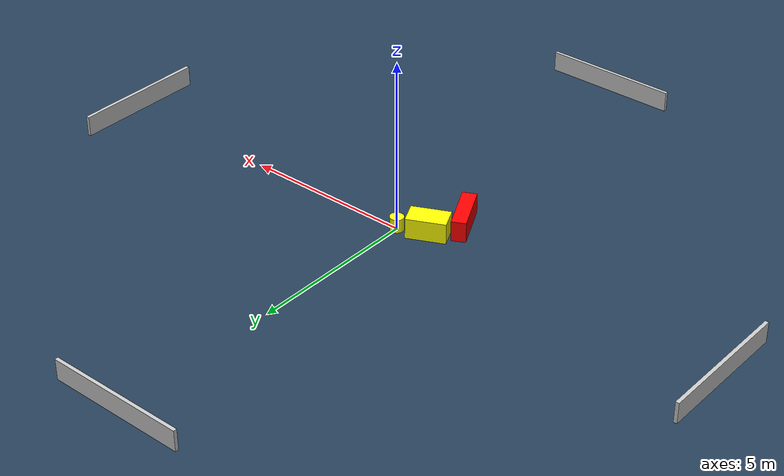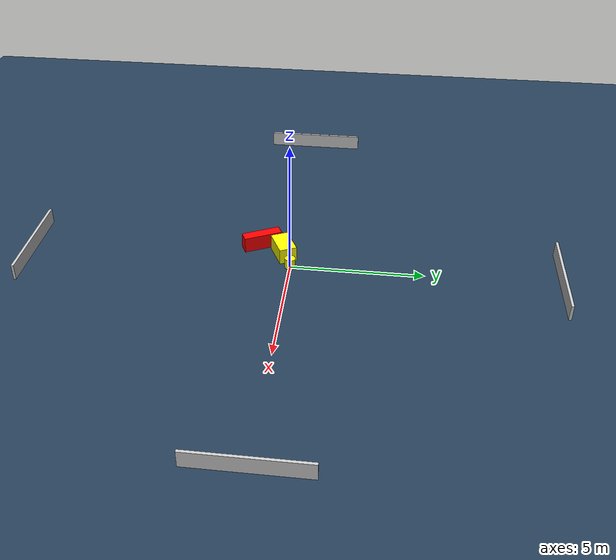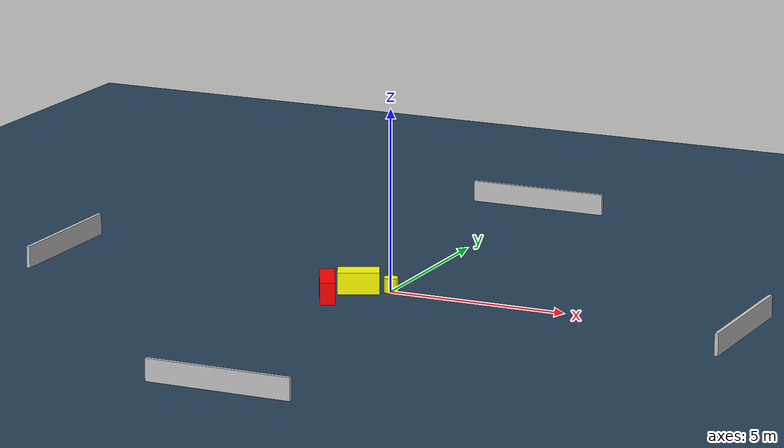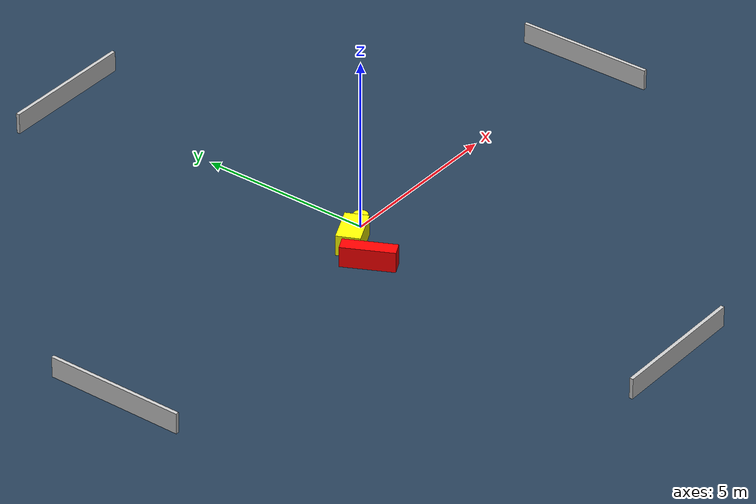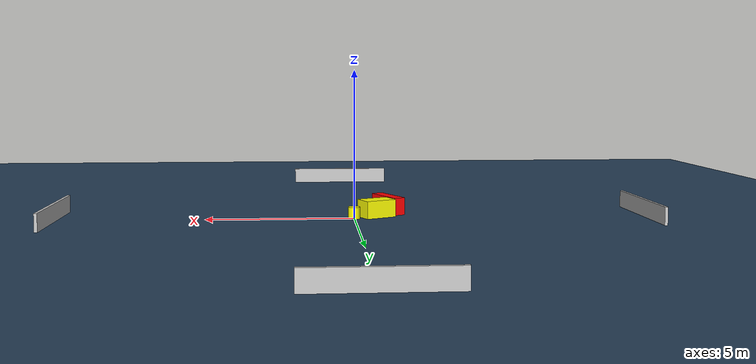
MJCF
<?xml version="1.0" ?>
<mujoco model="generated_environment">
  <option timestep="0.01" integrator="RK4" cone="elliptic"/>
  <default>
    <geom density="1"/>
  </default>
  <asset>
    <texture builtin="gradient" height="3072" name="skybox" rgb1="0.3 0.5 0.7" rgb2="0 0 0" type="skybox" width="512"/>
    <texture builtin="checker" height="300" name="groundplane" rgb1="0.2 0.3 0.4" rgb2="0.1 0.2 0.3" type="2d" width="300"/>
    <material name="groundplane" reflectance="0.2" texrepeat="5 5" texture="groundplane"/>
  </asset>
  <worldbody>
    <light dir="0 0 -1" directional="true" pos="0 0 1.5"/>
    <geom condim="3" friction="0.5 0.005 0.001" material="groundplane" name="floor" pos="0 0 0" size="0 0 0.05" type="plane"/>
    <body name="walls">
      <geom name="wall_1" condim="4" pos="-10.0 0.0 0.3" rgba="0.800000011920929 0.800000011920929 0.800000011920929 1.0" size="0.05 2.0 0.3" type="box"/>
      <geom name="wall_2" condim="4" pos="10.0 0.0 0.3" rgba="0.800000011920929 0.800000011920929 0.800000011920929 1.0" size="0.05 2.0 0.3" type="box"/>
      <geom name="wall_3" condim="4" pos="0.0 -10.0 0.3" rgba="0.800000011920929 0.800000011920929 0.800000011920929 1.0" size="2.0 0.05 0.3" type="box"/>
      <geom name="wall_4" condim="4" pos="0.0 10.0 0.3" rgba="0.800000011920929 0.800000011920929 0.800000011920929 1.0" size="2.0 0.05 0.3" type="box"/>
    </body>
    <body name="robot">
      <joint name="joint_x" type="slide" pos="0 0 0" axis="1 0 0"/>
      <joint name="joint_y" type="slide" pos="0 0 0" axis="0 1 0"/>
      <geom name="robot" type="cylinder" pos="0.0 0.0 0.2" size="0.2 0.2 0.0" mass="5.0" friction="1.0 0.005 0.0001" condim="4" rgba="1.0 1.0 0.0 1.0"/>
    </body>
    <body name="obstacle_1_movable">
      <geom name="obstacle_1_movable" condim="4" pos="-0.7989731347110338 -0.34393745403359843 0.3" euler="0 0 25.316136601840704" friction="0.0 0.005 0.001" rgba="1.0 1.0 0.0 1.0" size="0.5612053464129716 0.3335666525025306 0.3" type="box" mass="0.1"/>
      <joint type="free"/>
    </body>
    <body name="obstacle_2_static">
      <geom name="obstacle_2_static" condim="4" pos="-1.2875044577701154 -1.2515174741080977 0.3" euler="0 0 116.81129626379484" friction="0.0 0.005 0.001" rgba="1.0 0.0 0.0 1.0" size="0.747354096902674 0.20642613883769934 0.3" type="box"/>
    </body>
  </worldbody>
  <actuator>
    <motor name="actuator_x" joint="joint_x" gear="1" ctrlrange="-1 1"/>
    <motor name="actuator_y" joint="joint_y" gear="1" ctrlrange="-1 1"/>
  </actuator>
</mujoco>
